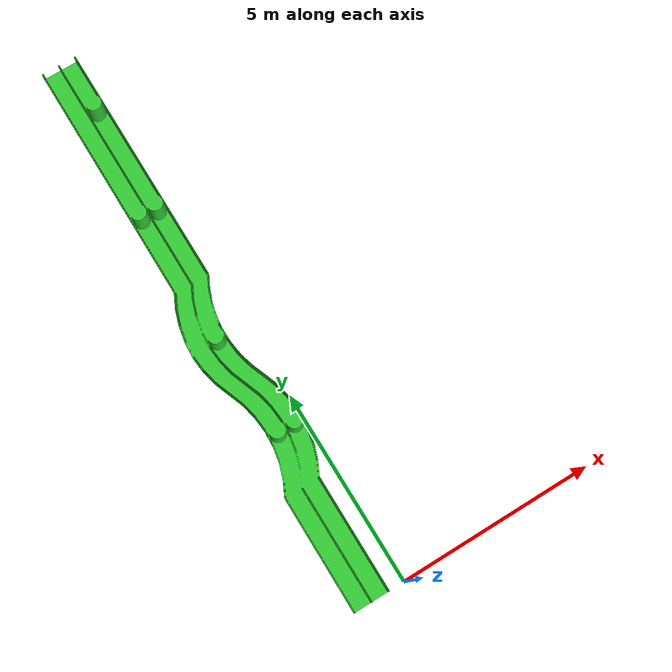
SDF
<?xml version='1.0'?>
<sdf version='1.6'>
  <model name='farm_model2'>
    <static>true</static>
    <link name='link'>
      <pose>0 0 0 -1.570796 3.141592 0</pose>

      <collision name='collision'>
        <geometry>
          <mesh>
            <uri>model://farm_model2/meshes/farm_block.stl</uri>
            <scale>0.001 0.001 0.001</scale>
          </mesh>
        </geometry>
      </collision>

      <visual name='visual'>
        <geometry>
          <mesh>
            <uri>model://farm_model2/meshes/farm_block.stl</uri>
            <scale>0.001 0.001 0.001</scale>
          </mesh>
        </geometry>

        <material>
          <ambient>0.2 0.8 0.2 1.0</ambient>
          <diffuse>0.2 0.8 0.2 1.0</diffuse>
          <specular>0.1 0.1 0.1 1.0</specular>
        </material>

      </visual>
    </link>
  </model>
</sdf>
